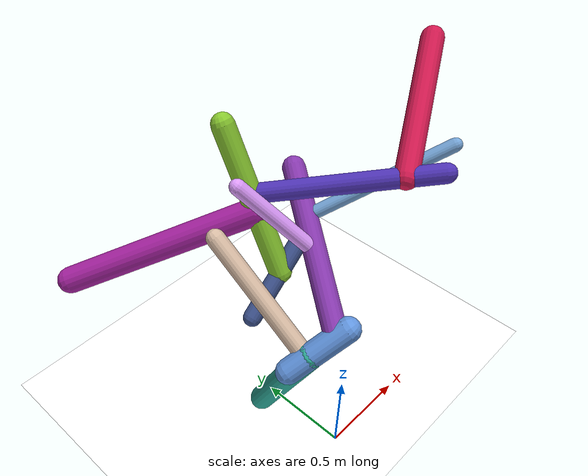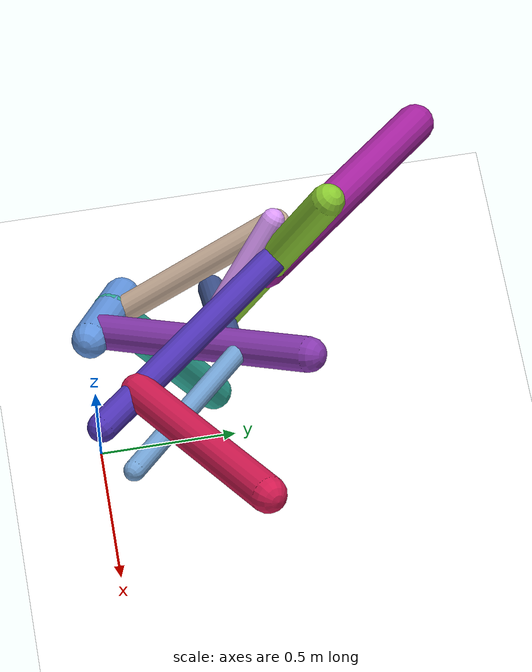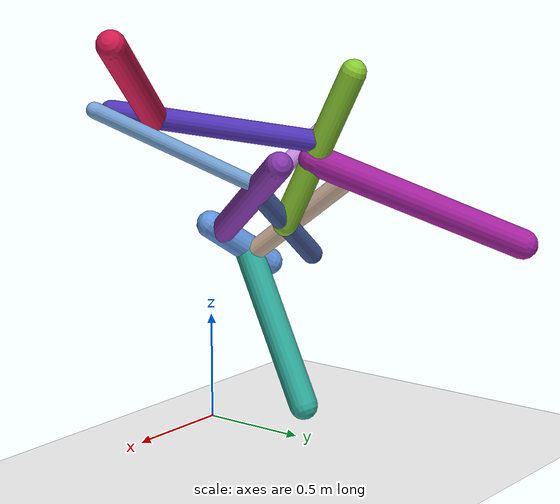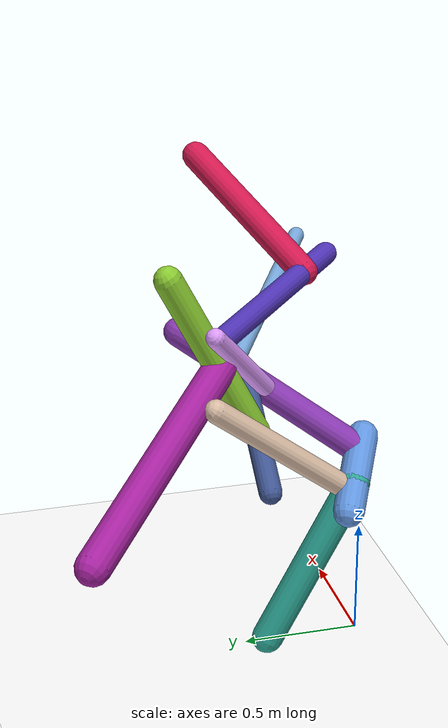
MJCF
<mujoco model="morphology">
  <option timestep="0.01"/>
  <default>
    <default class="/"/>
    <default class="0/"/>
    <default class="0/1/"/>
    <default class="0/1/2/"/>
    <default class="0/1/3/"/>
    <default class="0/1/4/"/>
    <default class="0/1/4/5/"/>
    <default class="0/1/4/5/6/"/>
    <default class="0/1/4/5/7/"/>
    <default class="0/1/4/5/7/8/"/>
    <default class="0/9/"/>
    <default class="0/9/10/"/>
  </default>
  <asset>
    <texture name="texplane" type="2d" builtin="checker" rgb1="0.10000000000000001 0.20000000000000001 0.29999999999999999" rgb2="0.20000000000000001 0.29999999999999999 0.40000000000000002" width="300" height="300"/>
    <material name="MatPlane" class="/" texture="texplane" texrepeat="20 20" specular="1" shininess="1" reflectance="0.5"/>
  </asset>
  <worldbody>
    <light name="//unnamed_light_0" class="/" directional="true" pos="0 0 1.5" dir="0 0 -1.3" cutoff="100" exponent="1" diffuse="1 1 1" specular="0.10000000000000001 0.10000000000000001 0.10000000000000001"/>
    <geom name="ground" class="/" type="plane" size="15 15 0.5" material="MatPlane" rgba="1 1 1 1"/>
    <site name="body" class="/" size="9.9999999999999995e-07 9.9999999999999995e-07 9.9999999999999995e-07" pos="0 0 0.93179324865341184"/>
    <body pos="0 0 0.93179324865341184" name="0/">
      <freejoint name="0/"/>
      <geom name="0/geom" class="0/" type="capsule" contype="1" conaffinity="1" condim="3" size="0.064928922683095233" rgba="0.38612640250710895 0.59122339172720217 0.88157180291880721 1" friction="0.59999999999999998 0.10000000000000001 0.10000000000000001" fromto="0 0 0 -0.25791835479945874 0.14176463191886213 -0.20336806842478317"/>
      <site name="0/end0" class="0/" size="0.0050000000000000001" pos="-0.25791835479945874 0.14176463191886213 -0.20336806842478317"/>
      <site name="0/attach1" class="0/" size="9.9999999999999995e-07 9.9999999999999995e-07 9.9999999999999995e-07" pos="-0.049520442615288464 0.027218874458446396 -0.039046762569658985"/>
      <body pos="-0.049520442615288464 0.027218874458446396 -0.039046762569658985" name="0/1/">
        <joint name="0/1/joint/" class="0/" type="hinge" axis="0 1 0" limited="true" range="-36.923249655214157 36.923249655214157"/>
        <geom name="0/1/geom" class="0/1/" type="capsule" contype="1" conaffinity="1" condim="3" size="0.060880998989674764" rgba="0.53383751289224624 0.22424572820076505 0.69057763367636871 1" friction="0.59999999999999998 0.10000000000000001 0.10000000000000001" fromto="0 0 0 0.42361097328443398 0.67003836205439082 0.43259294919305824"/>
        <site name="0/1/end1" class="0/1/" size="0.0050000000000000001" pos="0.42361097328443398 0.67003836205439082 0.43259294919305824"/>
        <site name="0/1/attach2" class="0/1/" size="9.9999999999999995e-07 9.9999999999999995e-07 9.9999999999999995e-07" pos="0.20796563208055216 0.32894556626439408 0.21237520221677028"/>
        <body pos="0.20796563208055216 0.32894556626439408 0.21237520221677028" name="0/1/2/">
          <joint name="0/1/2/joint/" class="0/1/" type="hinge" axis="-0.8831561591526057 0.3940824769001931 0.25442916489865275" limited="true" range="-67.636437379097899 67.636437379097899"/>
          <geom name="0/1/2/geom" class="0/1/2/" type="capsule" contype="1" conaffinity="1" condim="3" size="0.040219988788765371" rgba="0.87047462476395743 0.60924746273397534 0.99120958221212918 1" friction="0.59999999999999998 0.10000000000000001 0.10000000000000001" fromto="0 0 0 -0.22899766356222639 0.29427861282549572 0.36292972423472425"/>
          <site name="0/1/2/end2" class="0/1/2/" size="0.0050000000000000001" pos="-0.22899766356222639 0.29427861282549572 0.36292972423472425"/>
        </body>
        <site name="0/1/attach3" class="0/1/" size="9.9999999999999995e-07 9.9999999999999995e-07 9.9999999999999995e-07" pos="0.2946043961533687 0.46598473481961511 0.30085099918234076"/>
        <body pos="0.2946043961533687 0.46598473481961511 0.30085099918234076" name="0/1/3/">
          <joint name="0/1/3/joint/" class="0/1/" type="hinge" axis="-2.7755575615628914e-17 -0.54240141359029237 0.84011945968133139" limited="true" range="-62.157678088509428 62.157678088509428"/>
          <geom name="0/1/3/geom" class="0/1/3/" type="capsule" contype="1" conaffinity="1" condim="3" size="0.03539999523745356" rgba="0.4595801880099365 0.64879606912867915 0.845481284792576 1" friction="0.59999999999999998 0.10000000000000001 0.10000000000000001" fromto="0 0 0 0.55574523869546355 -0.4395472583936651 0.36013526850960487"/>
          <site name="0/1/3/end3" class="0/1/3/" size="0.0050000000000000001" pos="0.55574523869546355 -0.4395472583936651 0.36013526850960487"/>
        </body>
        <site name="0/1/attach4" class="0/1/" size="9.9999999999999995e-07 9.9999999999999995e-07 9.9999999999999995e-07" pos="0.27081704974052023 0.42835956542301529 0.27655928110330597"/>
        <body pos="0.27081704974052023 0.42835956542301529 0.27655928110330597" name="0/1/4/">
          <joint name="0/1/4/joint/" class="0/1/" type="hinge" axis="-0.8831561591526057 0.3940824769001931 0.25442916489865275" limited="true" range="-47.188983320807125 47.188983320807125"/>
          <geom name="0/1/4/geom" class="0/1/4/" type="capsule" contype="1" conaffinity="1" condim="3" size="0.047862345383242751" rgba="0.25352452591795405 0.34106277802766261 0.57986922596886958 1" friction="0.59999999999999998 0.10000000000000001 0.10000000000000001" fromto="0 0 0 -0.40770523524421287 -0.0031101716263395307 -0.34996990572048986"/>
          <site name="0/1/4/end4" class="0/1/4/" size="0.0050000000000000001" pos="-0.40770523524421287 -0.0031101716263395307 -0.34996990572048986"/>
          <site name="0/1/4/attach5" class="0/1/4/" size="9.9999999999999995e-07 9.9999999999999995e-07 9.9999999999999995e-07" pos="-0.20390397275209352 -0.0015554775748013205 -0.17502903556619567"/>
          <body pos="-0.20390397275209352 -0.0015554775748013205 -0.17502903556619567" name="0/1/4/5/">
            <joint name="0/1/4/5/joint/" class="0/1/4/" type="hinge" axis="0.65135133345929019 -0.006742954828172408 -0.75874631660456149" limited="true" range="-69.143426282794053 69.143426282794053"/>
            <geom name="0/1/4/5/geom" class="0/1/4/5/" type="capsule" contype="1" conaffinity="1" condim="3" size="0.058245505139039956" rgba="0.54429438754268145 0.79520278045002424 0.19253089459944817 1" friction="0.59999999999999998 0.10000000000000001 0.10000000000000001" fromto="0 0 0 -0.0069585276689325681 0.36427108741293956 0.69926625561098676"/>
            <site name="0/1/4/5/end5" class="0/1/4/5/" size="0.0050000000000000001" pos="-0.0069585276689325681 0.36427108741293956 0.69926625561098676"/>
            <site name="0/1/4/5/attach6" class="0/1/4/5/" size="9.9999999999999995e-07 9.9999999999999995e-07 9.9999999999999995e-07" pos="-0.0030216439954241642 0.15817966046210832 0.30364665960921572"/>
            <body pos="-0.0030216439954241642 0.15817966046210832 0.30364665960921572" name="0/1/4/5/6/">
              <joint name="0/1/4/5/6/joint/" class="0/1/4/5/" type="hinge" axis="-0.99996105768796262 -0.0040772517541310949 -0.0078268209193953497" limited="true" range="-40.844211259715209 40.844211259715209"/>
              <geom name="0/1/4/5/6/geom" class="0/1/4/5/6/" type="capsule" contype="1" conaffinity="1" condim="3" size="0.069624025599259384" rgba="0.6519603425626922 0.13271678087136818 0.63018382320261723 1" friction="0.59999999999999998 0.10000000000000001 0.10000000000000001" fromto="0 0 0 -0.70325197150122376 0.65884338224187178 -0.41543928319876378"/>
              <site name="0/1/4/5/6/end6" class="0/1/4/5/6/" size="0.0050000000000000001" pos="-0.70325197150122376 0.65884338224187178 -0.41543928319876378"/>
            </body>
            <site name="0/1/4/5/attach7" class="0/1/4/5/" size="9.9999999999999995e-07 9.9999999999999995e-07 9.9999999999999995e-07" pos="-0.0038262165844653831 0.20029812946255529 0.38449859962778499"/>
            <body pos="-0.0038262165844653831 0.20029812946255529 0.38449859962778499" name="0/1/4/5/7/">
              <joint name="0/1/4/5/7/joint/" class="0/1/4/5/" type="hinge" axis="1.6653345369377348e-16 -0.88687775366476573 0.46200416670690181" limited="true" range="-58.981332531887247 58.981332531887247"/>
              <geom name="0/1/4/5/7/geom" class="0/1/4/5/7/" type="capsule" contype="1" conaffinity="1" condim="3" size="0.049958476376630395" rgba="0.3095794835750999 0.20321631949837204 0.71128483697583811 1" friction="0.59999999999999998 0.10000000000000001 0.10000000000000001" fromto="0 0 0 0.60458297961445995 -0.67837433484250287 0.14455927122076917"/>
              <site name="0/1/4/5/7/end7" class="0/1/4/5/7/" size="0.0050000000000000001" pos="0.60458297961445995 -0.67837433484250287 0.14455927122076917"/>
              <site name="0/1/4/5/7/attach8" class="0/1/4/5/7/" size="9.9999999999999995e-07 9.9999999999999995e-07 9.9999999999999995e-07" pos="0.48315029100149015 -0.54212038436164167 0.11552401624309222"/>
              <body pos="0.48315029100149015 -0.54212038436164167 0.11552401624309222" name="0/1/4/5/7/8/">
                <joint name="0/1/4/5/7/8/joint/" class="0/1/4/5/7/" type="hinge" axis="-1.3877787807814457e-17 0.20841702001572315 0.97804005325332422" limited="true" range="-34.050550675417917 34.050550675417917"/>
                <geom name="0/1/4/5/7/8/geom" class="0/1/4/5/7/8/" type="capsule" contype="1" conaffinity="1" condim="3" size="0.060440778044779507" rgba="0.83047752961267673 0.099464030619831001 0.31826629833279874 1" friction="0.59999999999999998 0.10000000000000001 0.10000000000000001" fromto="0 0 0 0.59703980078220975 0.32583773789629777 0.37227234635831086"/>
                <site name="0/1/4/5/7/8/end8" class="0/1/4/5/7/8/" size="0.0050000000000000001" pos="0.59703980078220975 0.32583773789629777 0.37227234635831086"/>
              </body>
            </body>
          </body>
        </body>
      </body>
      <site name="0/attach9" class="0/" size="9.9999999999999995e-07 9.9999999999999995e-07 9.9999999999999995e-07" pos="-0.16437434206272389 0.090348234880552561 -0.12960881543263045"/>
      <body pos="-0.16437434206272389 0.090348234880552561 -0.12960881543263045" name="0/9/">
        <joint name="0/9/joint/" class="0/" type="hinge" axis="0 1 0" limited="true" range="-66.514768494995167 66.514768494995167"/>
        <geom name="0/9/geom" class="0/9/" type="capsule" contype="1" conaffinity="1" condim="3" size="0.066559310687333437" rgba="0.18366670492242088 0.6758769628920912 0.60777692037212783 1" friction="0.59999999999999998 0.10000000000000001 0.10000000000000001" fromto="0 0 0 0.029561609256497534 0.35190988958376157 -0.70218444493864329"/>
        <site name="0/9/end9" class="0/9/" size="0.0050000000000000001" pos="0.029561609256497534 0.35190988958376157 -0.70218444493864329"/>
        <site name="0/9/attach10" class="0/9/" size="9.9999999999999995e-07 9.9999999999999995e-07 9.9999999999999995e-07" pos="0.0011904367164796269 0.014171300683190061 -0.028276746970806357"/>
        <body pos="0.0011904367164796269 0.014171300683190061 -0.028276746970806357" name="0/9/10/">
          <joint name="0/9/10/joint/" class="0/9/" type="hinge" axis="1.1102230246251565e-16 0.89401038680470779 0.44804623453980313" limited="true" range="-57.726230941464358 57.726230941464358"/>
          <geom name="0/9/10/geom" class="0/9/10/" type="capsule" contype="1" conaffinity="1" condim="3" size="0.048583511663382026" rgba="0.85201808016027558 0.74065710866592482 0.64890003782593586 1" friction="0.59999999999999998 0.10000000000000001 0.10000000000000001" fromto="0 0 0 -0.033357291551844304 0.57692729025447886 0.43994813570357882"/>
          <site name="0/9/10/end10" class="0/9/10/" size="0.0050000000000000001" pos="-0.033357291551844304 0.57692729025447886 0.43994813570357882"/>
        </body>
      </body>
      <camera name="0/iso" class="0/" mode="trackcom" pos="-2.2999999999999998 -2.2999999999999998 1" xyaxes="0.45000000000000001 -0.45000000000000001 0 0.29999999999999999 0.14999999999999999 0.93999999999999995"/>
    </body>
  </worldbody>
  <actuator>
    <motor name="0/1/motor" class="0/1/" ctrllimited="true" ctrlrange="-1 1" gear="78" joint="0/1/joint/"/>
    <motor name="0/1/2/motor" class="0/1/2/" ctrllimited="true" ctrlrange="-1 1" gear="99" joint="0/1/2/joint/"/>
    <motor name="0/1/3/motor" class="0/1/3/" ctrllimited="true" ctrlrange="-1 1" gear="50" joint="0/1/3/joint/"/>
    <motor name="0/1/4/motor" class="0/1/4/" ctrllimited="true" ctrlrange="-1 1" gear="95" joint="0/1/4/joint/"/>
    <motor name="0/1/4/5/motor" class="0/1/4/5/" ctrllimited="true" ctrlrange="-1 1" gear="60" joint="0/1/4/5/joint/"/>
    <motor name="0/1/4/5/6/motor" class="0/1/4/5/6/" ctrllimited="true" ctrlrange="-1 1" gear="98" joint="0/1/4/5/6/joint/"/>
    <motor name="0/1/4/5/7/motor" class="0/1/4/5/7/" ctrllimited="true" ctrlrange="-1 1" gear="92" joint="0/1/4/5/7/joint/"/>
    <motor name="0/1/4/5/7/8/motor" class="0/1/4/5/7/8/" ctrllimited="true" ctrlrange="-1 1" gear="63" joint="0/1/4/5/7/8/joint/"/>
    <motor name="0/9/motor" class="0/9/" ctrllimited="true" ctrlrange="-1 1" gear="75" joint="0/9/joint/"/>
    <motor name="0/9/10/motor" class="0/9/10/" ctrllimited="true" ctrlrange="-1 1" gear="74" joint="0/9/10/joint/"/>
  </actuator>
  <sensor>
    <subtreelinvel name="velocity" body="0/"/>
  </sensor>
</mujoco>
